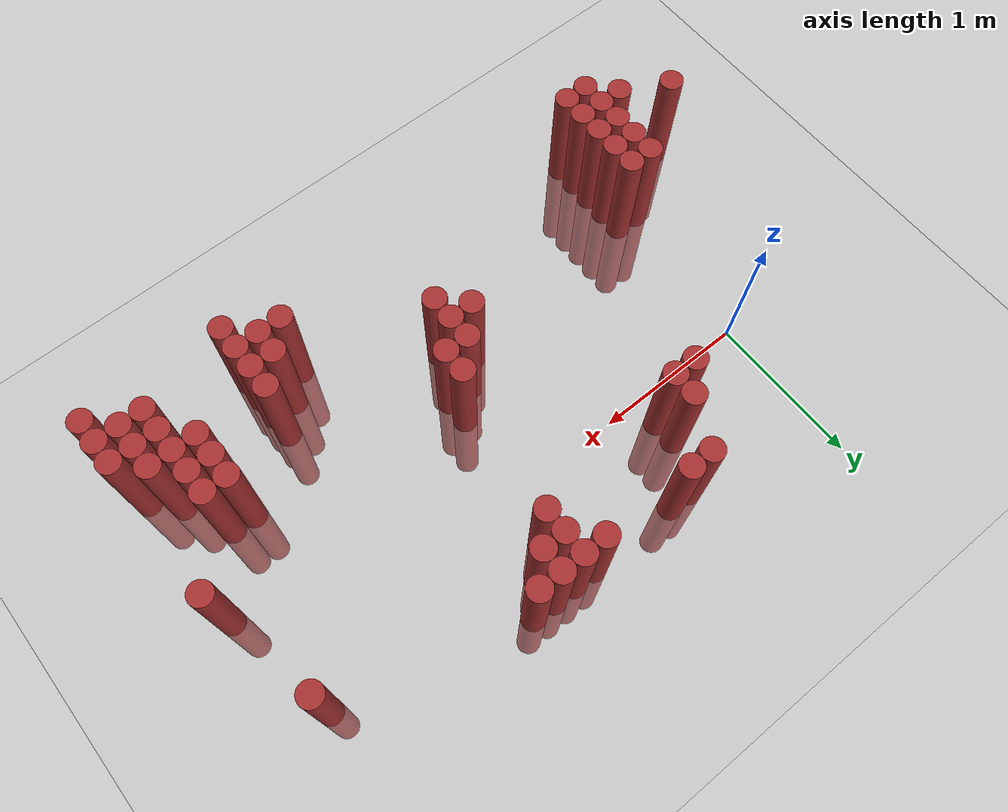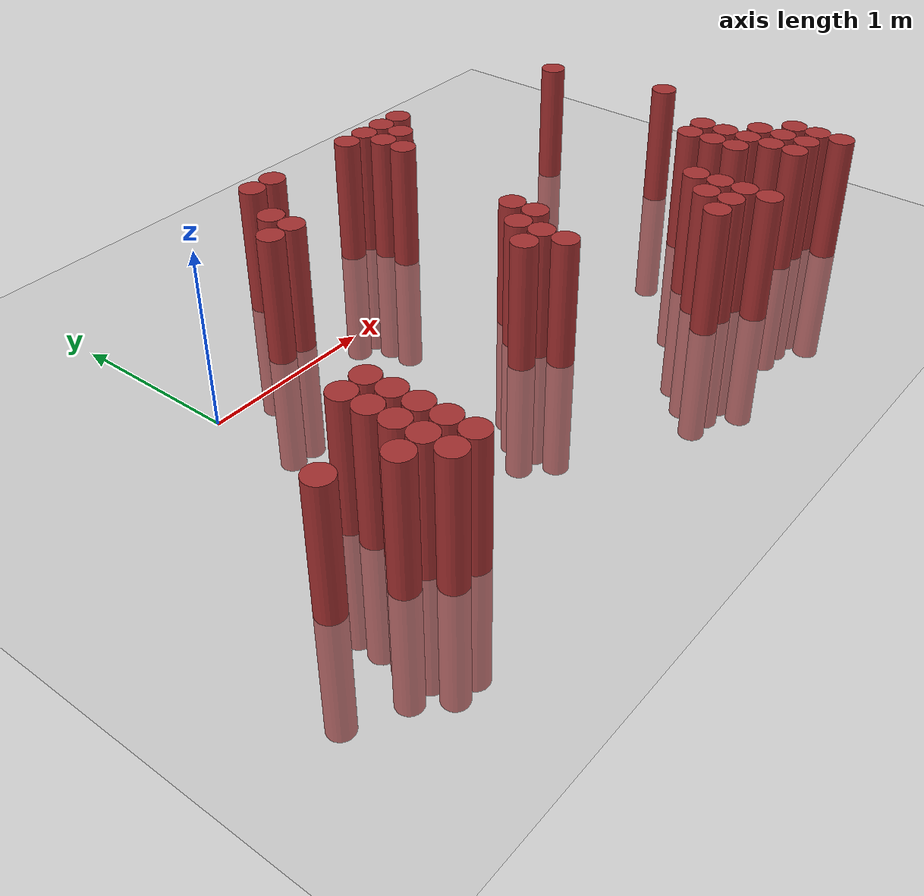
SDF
<sdf version="1.6">
 <world name="default">
  <model name="ground_plane">
   <static>1</static>
   <link name="link">
    <collision name="collision">
     <geometry><plane><normal>0 0 1</normal><size>100 100</size></plane></geometry>
     <surface><friction><ode><mu>100</mu><mu2>50</mu2></ode></friction></surface>
    </collision>
    <visual name="visual">
     <cast_shadows>0</cast_shadows>
     <geometry><plane><normal>0 0 1</normal><size>100 100</size></plane></geometry>
     <material>
      <script><uri>file://media/materials/scripts/gazebo.material</uri><name>Gazebo/Grey</name></script>
     </material>
    </visual>
   </link>
  </model>
  <model name="unit_cylinder_403">
   <static>1</static>
   <pose>-0.575000 -1.325000 0.000000 0.000000 0.000000 0.000000</pose>
   <link name="link">
    <inertial>
     <mass>1</mass>
     <inertia><ixx>0.145833</ixx><ixy>0</ixy><ixz>0</ixz><iyy>0.145833</iyy><iyz>0</iyz><izz>0.125</izz></inertia>
    </inertial>
    <collision name="collision">
     <geometry><cylinder><radius>0.075000</radius><length>1.5</length></cylinder></geometry>
    </collision>
    <visual name="visual">
     <geometry><cylinder><radius>0.075000</radius><length>1.5</length></cylinder></geometry>
     <material>
      <ambient>0.648000 0.192000 0.192000 1</ambient>
      <diffuse>0.648000 0.192000 0.192000 1</diffuse>
     </material>
     <material>
      <script><name>Gazebo/Grey</name><uri>file://media/materials/scripts/gazebo.material</uri></script>
     </material>
    </visual>
   </link>
  </model>
  <model name="unit_cylinder_411">
   <static>1</static>
   <pose>-0.275000 -1.475000 0.000000 0.000000 0.000000 0.000000</pose>
   <link name="link">
    <inertial>
     <mass>1</mass>
     <inertia><ixx>0.145833</ixx><ixy>0</ixy><ixz>0</ixz><iyy>0.145833</iyy><iyz>0</iyz><izz>0.125</izz></inertia>
    </inertial>
    <collision name="collision">
     <geometry><cylinder><radius>0.075000</radius><length>1.5</length></cylinder></geometry>
    </collision>
    <visual name="visual">
     <geometry><cylinder><radius>0.075000</radius><length>1.5</length></cylinder></geometry>
     <material>
      <ambient>0.648000 0.192000 0.192000 1</ambient>
      <diffuse>0.648000 0.192000 0.192000 1</diffuse>
     </material>
     <material>
      <script><name>Gazebo/Grey</name><uri>file://media/materials/scripts/gazebo.material</uri></script>
     </material>
    </visual>
   </link>
  </model>
  <model name="unit_cylinder_418">
   <static>1</static>
   <pose>-0.125000 -1.625000 0.000000 0.000000 0.000000 0.000000</pose>
   <link name="link">
    <inertial>
     <mass>1</mass>
     <inertia><ixx>0.145833</ixx><ixy>0</ixy><ixz>0</ixz><iyy>0.145833</iyy><iyz>0</iyz><izz>0.125</izz></inertia>
    </inertial>
    <collision name="collision">
     <geometry><cylinder><radius>0.075000</radius><length>1.5</length></cylinder></geometry>
    </collision>
    <visual name="visual">
     <geometry><cylinder><radius>0.075000</radius><length>1.5</length></cylinder></geometry>
     <material>
      <ambient>0.648000 0.192000 0.192000 1</ambient>
      <diffuse>0.648000 0.192000 0.192000 1</diffuse>
     </material>
     <material>
      <script><name>Gazebo/Grey</name><uri>file://media/materials/scripts/gazebo.material</uri></script>
     </material>
    </visual>
   </link>
  </model>
  <model name="unit_cylinder_419">
   <static>1</static>
   <pose>-0.125000 -1.475000 0.000000 0.000000 0.000000 0.000000</pose>
   <link name="link">
    <inertial>
     <mass>1</mass>
     <inertia><ixx>0.145833</ixx><ixy>0</ixy><ixz>0</ixz><iyy>0.145833</iyy><iyz>0</iyz><izz>0.125</izz></inertia>
    </inertial>
    <collision name="collision">
     <geometry><cylinder><radius>0.075000</radius><length>1.5</length></cylinder></geometry>
    </collision>
    <visual name="visual">
     <geometry><cylinder><radius>0.075000</radius><length>1.5</length></cylinder></geometry>
     <material>
      <ambient>0.648000 0.192000 0.192000 1</ambient>
      <diffuse>0.648000 0.192000 0.192000 1</diffuse>
     </material>
     <material>
      <script><name>Gazebo/Grey</name><uri>file://media/materials/scripts/gazebo.material</uri></script>
     </material>
    </visual>
   </link>
  </model>
  <model name="unit_cylinder_420">
   <static>1</static>
   <pose>-0.125000 -1.325000 0.000000 0.000000 0.000000 0.000000</pose>
   <link name="link">
    <inertial>
     <mass>1</mass>
     <inertia><ixx>0.145833</ixx><ixy>0</ixy><ixz>0</ixz><iyy>0.145833</iyy><iyz>0</iyz><izz>0.125</izz></inertia>
    </inertial>
    <collision name="collision">
     <geometry><cylinder><radius>0.075000</radius><length>1.5</length></cylinder></geometry>
    </collision>
    <visual name="visual">
     <geometry><cylinder><radius>0.075000</radius><length>1.5</length></cylinder></geometry>
     <material>
      <ambient>0.648000 0.192000 0.192000 1</ambient>
      <diffuse>0.648000 0.192000 0.192000 1</diffuse>
     </material>
     <material>
      <script><name>Gazebo/Grey</name><uri>file://media/materials/scripts/gazebo.material</uri></script>
     </material>
    </visual>
   </link>
  </model>
  <model name="unit_cylinder_421">
   <static>1</static>
   <pose>-0.125000 -1.175000 0.000000 0.000000 0.000000 0.000000</pose>
   <link name="link">
    <inertial>
     <mass>1</mass>
     <inertia><ixx>0.145833</ixx><ixy>0</ixy><ixz>0</ixz><iyy>0.145833</iyy><iyz>0</iyz><izz>0.125</izz></inertia>
    </inertial>
    <collision name="collision">
     <geometry><cylinder><radius>0.075000</radius><length>1.5</length></cylinder></geometry>
    </collision>
    <visual name="visual">
     <geometry><cylinder><radius>0.075000</radius><length>1.5</length></cylinder></geometry>
     <material>
      <ambient>0.648000 0.192000 0.192000 1</ambient>
      <diffuse>0.648000 0.192000 0.192000 1</diffuse>
     </material>
     <material>
      <script><name>Gazebo/Grey</name><uri>file://media/materials/scripts/gazebo.material</uri></script>
     </material>
    </visual>
   </link>
  </model>
  <model name="unit_cylinder_422">
   <static>1</static>
   <pose>-0.125000 -1.025000 0.000000 0.000000 0.000000 0.000000</pose>
   <link name="link">
    <inertial>
     <mass>1</mass>
     <inertia><ixx>0.145833</ixx><ixy>0</ixy><ixz>0</ixz><iyy>0.145833</iyy><iyz>0</iyz><izz>0.125</izz></inertia>
    </inertial>
    <collision name="collision">
     <geometry><cylinder><radius>0.075000</radius><length>1.5</length></cylinder></geometry>
    </collision>
    <visual name="visual">
     <geometry><cylinder><radius>0.075000</radius><length>1.5</length></cylinder></geometry>
     <material>
      <ambient>0.648000 0.192000 0.192000 1</ambient>
      <diffuse>0.648000 0.192000 0.192000 1</diffuse>
     </material>
     <material>
      <script><name>Gazebo/Grey</name><uri>file://media/materials/scripts/gazebo.material</uri></script>
     </material>
    </visual>
   </link>
  </model>
  <model name="unit_cylinder_429">
   <static>1</static>
   <pose>0.025000 -1.625000 0.000000 0.000000 0.000000 0.000000</pose>
   <link name="link">
    <inertial>
     <mass>1</mass>
     <inertia><ixx>0.145833</ixx><ixy>0</ixy><ixz>0</ixz><iyy>0.145833</iyy><iyz>0</iyz><izz>0.125</izz></inertia>
    </inertial>
    <collision name="collision">
     <geometry><cylinder><radius>0.075000</radius><length>1.5</length></cylinder></geometry>
    </collision>
    <visual name="visual">
     <geometry><cylinder><radius>0.075000</radius><length>1.5</length></cylinder></geometry>
     <material>
      <ambient>0.648000 0.192000 0.192000 1</ambient>
      <diffuse>0.648000 0.192000 0.192000 1</diffuse>
     </material>
     <material>
      <script><name>Gazebo/Grey</name><uri>file://media/materials/scripts/gazebo.material</uri></script>
     </material>
    </visual>
   </link>
  </model>
  <model name="unit_cylinder_430">
   <static>1</static>
   <pose>0.025000 -1.475000 0.000000 0.000000 0.000000 0.000000</pose>
   <link name="link">
    <inertial>
     <mass>1</mass>
     <inertia><ixx>0.145833</ixx><ixy>0</ixy><ixz>0</ixz><iyy>0.145833</iyy><iyz>0</iyz><izz>0.125</izz></inertia>
    </inertial>
    <collision name="collision">
     <geometry><cylinder><radius>0.075000</radius><length>1.5</length></cylinder></geometry>
    </collision>
    <visual name="visual">
     <geometry><cylinder><radius>0.075000</radius><length>1.5</length></cylinder></geometry>
     <material>
      <ambient>0.648000 0.192000 0.192000 1</ambient>
      <diffuse>0.648000 0.192000 0.192000 1</diffuse>
     </material>
     <material>
      <script><name>Gazebo/Grey</name><uri>file://media/materials/scripts/gazebo.material</uri></script>
     </material>
    </visual>
   </link>
  </model>
  <model name="unit_cylinder_431">
   <static>1</static>
   <pose>0.025000 -1.325000 0.000000 0.000000 0.000000 0.000000</pose>
   <link name="link">
    <inertial>
     <mass>1</mass>
     <inertia><ixx>0.145833</ixx><ixy>0</ixy><ixz>0</ixz><iyy>0.145833</iyy><iyz>0</iyz><izz>0.125</izz></inertia>
    </inertial>
    <collision name="collision">
     <geometry><cylinder><radius>0.075000</radius><length>1.5</length></cylinder></geometry>
    </collision>
    <visual name="visual">
     <geometry><cylinder><radius>0.075000</radius><length>1.5</length></cylinder></geometry>
     <material>
      <ambient>0.648000 0.192000 0.192000 1</ambient>
      <diffuse>0.648000 0.192000 0.192000 1</diffuse>
     </material>
     <material>
      <script><name>Gazebo/Grey</name><uri>file://media/materials/scripts/gazebo.material</uri></script>
     </material>
    </visual>
   </link>
  </model>
  <model name="unit_cylinder_432">
   <static>1</static>
   <pose>0.025000 -1.175000 0.000000 0.000000 0.000000 0.000000</pose>
   <link name="link">
    <inertial>
     <mass>1</mass>
     <inertia><ixx>0.145833</ixx><ixy>0</ixy><ixz>0</ixz><iyy>0.145833</iyy><iyz>0</iyz><izz>0.125</izz></inertia>
    </inertial>
    <collision name="collision">
     <geometry><cylinder><radius>0.075000</radius><length>1.5</length></cylinder></geometry>
    </collision>
    <visual name="visual">
     <geometry><cylinder><radius>0.075000</radius><length>1.5</length></cylinder></geometry>
     <material>
      <ambient>0.648000 0.192000 0.192000 1</ambient>
      <diffuse>0.648000 0.192000 0.192000 1</diffuse>
     </material>
     <material>
      <script><name>Gazebo/Grey</name><uri>file://media/materials/scripts/gazebo.material</uri></script>
     </material>
    </visual>
   </link>
  </model>
  <model name="unit_cylinder_433">
   <static>1</static>
   <pose>0.025000 -1.025000 0.000000 0.000000 0.000000 0.000000</pose>
   <link name="link">
    <inertial>
     <mass>1</mass>
     <inertia><ixx>0.145833</ixx><ixy>0</ixy><ixz>0</ixz><iyy>0.145833</iyy><iyz>0</iyz><izz>0.125</izz></inertia>
    </inertial>
    <collision name="collision">
     <geometry><cylinder><radius>0.075000</radius><length>1.5</length></cylinder></geometry>
    </collision>
    <visual name="visual">
     <geometry><cylinder><radius>0.075000</radius><length>1.5</length></cylinder></geometry>
     <material>
      <ambient>0.648000 0.192000 0.192000 1</ambient>
      <diffuse>0.648000 0.192000 0.192000 1</diffuse>
     </material>
     <material>
      <script><name>Gazebo/Grey</name><uri>file://media/materials/scripts/gazebo.material</uri></script>
     </material>
    </visual>
   </link>
  </model>
  <model name="unit_cylinder_446">
   <static>1</static>
   <pose>0.625000 0.175000 0.000000 0.000000 0.000000 0.000000</pose>
   <link name="link">
    <inertial>
     <mass>1</mass>
     <inertia><ixx>0.145833</ixx><ixy>0</ixy><ixz>0</ixz><iyy>0.145833</iyy><iyz>0</iyz><izz>0.125</izz></inertia>
    </inertial>
    <collision name="collision">
     <geometry><cylinder><radius>0.075000</radius><length>1.5</length></cylinder></geometry>
    </collision>
    <visual name="visual">
     <geometry><cylinder><radius>0.075000</radius><length>1.5</length></cylinder></geometry>
     <material>
      <ambient>0.648000 0.192000 0.192000 1</ambient>
      <diffuse>0.648000 0.192000 0.192000 1</diffuse>
     </material>
     <material>
      <script><name>Gazebo/Grey</name><uri>file://media/materials/scripts/gazebo.material</uri></script>
     </material>
    </visual>
   </link>
  </model>
  <model name="unit_cylinder_451">
   <static>1</static>
   <pose>0.775000 0.175000 0.000000 0.000000 0.000000 0.000000</pose>
   <link name="link">
    <inertial>
     <mass>1</mass>
     <inertia><ixx>0.145833</ixx><ixy>0</ixy><ixz>0</ixz><iyy>0.145833</iyy><iyz>0</iyz><izz>0.125</izz></inertia>
    </inertial>
    <collision name="collision">
     <geometry><cylinder><radius>0.075000</radius><length>1.5</length></cylinder></geometry>
    </collision>
    <visual name="visual">
     <geometry><cylinder><radius>0.075000</radius><length>1.5</length></cylinder></geometry>
     <material>
      <ambient>0.648000 0.192000 0.192000 1</ambient>
      <diffuse>0.648000 0.192000 0.192000 1</diffuse>
     </material>
     <material>
      <script><name>Gazebo/Grey</name><uri>file://media/materials/scripts/gazebo.material</uri></script>
     </material>
    </visual>
   </link>
  </model>
  <model name="unit_cylinder_452">
   <static>1</static>
   <pose>0.775000 0.325000 0.000000 0.000000 0.000000 0.000000</pose>
   <link name="link">
    <inertial>
     <mass>1</mass>
     <inertia><ixx>0.145833</ixx><ixy>0</ixy><ixz>0</ixz><iyy>0.145833</iyy><iyz>0</iyz><izz>0.125</izz></inertia>
    </inertial>
    <collision name="collision">
     <geometry><cylinder><radius>0.075000</radius><length>1.5</length></cylinder></geometry>
    </collision>
    <visual name="visual">
     <geometry><cylinder><radius>0.075000</radius><length>1.5</length></cylinder></geometry>
     <material>
      <ambient>0.648000 0.192000 0.192000 1</ambient>
      <diffuse>0.648000 0.192000 0.192000 1</diffuse>
     </material>
     <material>
      <script><name>Gazebo/Grey</name><uri>file://media/materials/scripts/gazebo.material</uri></script>
     </material>
    </visual>
   </link>
  </model>
  <model name="unit_cylinder_461">
   <static>1</static>
   <pose>0.925000 0.625000 0.000000 0.000000 0.000000 0.000000</pose>
   <link name="link">
    <inertial>
     <mass>1</mass>
     <inertia><ixx>0.145833</ixx><ixy>0</ixy><ixz>0</ixz><iyy>0.145833</iyy><iyz>0</iyz><izz>0.125</izz></inertia>
    </inertial>
    <collision name="collision">
     <geometry><cylinder><radius>0.075000</radius><length>1.5</length></cylinder></geometry>
    </collision>
    <visual name="visual">
     <geometry><cylinder><radius>0.075000</radius><length>1.5</length></cylinder></geometry>
     <material>
      <ambient>0.648000 0.192000 0.192000 1</ambient>
      <diffuse>0.648000 0.192000 0.192000 1</diffuse>
     </material>
     <material>
      <script><name>Gazebo/Grey</name><uri>file://media/materials/scripts/gazebo.material</uri></script>
     </material>
    </visual>
   </link>
  </model>
  <model name="unit_cylinder_478">
   <static>1</static>
   <pose>1.075000 0.625000 0.000000 0.000000 0.000000 0.000000</pose>
   <link name="link">
    <inertial>
     <mass>1</mass>
     <inertia><ixx>0.145833</ixx><ixy>0</ixy><ixz>0</ixz><iyy>0.145833</iyy><iyz>0</iyz><izz>0.125</izz></inertia>
    </inertial>
    <collision name="collision">
     <geometry><cylinder><radius>0.075000</radius><length>1.5</length></cylinder></geometry>
    </collision>
    <visual name="visual">
     <geometry><cylinder><radius>0.075000</radius><length>1.5</length></cylinder></geometry>
     <material>
      <ambient>0.648000 0.192000 0.192000 1</ambient>
      <diffuse>0.648000 0.192000 0.192000 1</diffuse>
     </material>
     <material>
      <script><name>Gazebo/Grey</name><uri>file://media/materials/scripts/gazebo.material</uri></script>
     </material>
    </visual>
   </link>
  </model>
  <model name="unit_cylinder_504">
   <static>1</static>
   <pose>1.375000 -0.875000 0.000000 0.000000 0.000000 0.000000</pose>
   <link name="link">
    <inertial>
     <mass>1</mass>
     <inertia><ixx>0.145833</ixx><ixy>0</ixy><ixz>0</ixz><iyy>0.145833</iyy><iyz>0</iyz><izz>0.125</izz></inertia>
    </inertial>
    <collision name="collision">
     <geometry><cylinder><radius>0.075000</radius><length>1.5</length></cylinder></geometry>
    </collision>
    <visual name="visual">
     <geometry><cylinder><radius>0.075000</radius><length>1.5</length></cylinder></geometry>
     <material>
      <ambient>0.648000 0.192000 0.192000 1</ambient>
      <diffuse>0.648000 0.192000 0.192000 1</diffuse>
     </material>
     <material>
      <script><name>Gazebo/Grey</name><uri>file://media/materials/scripts/gazebo.material</uri></script>
     </material>
    </visual>
   </link>
  </model>
  <model name="unit_cylinder_511">
   <static>1</static>
   <pose>1.525000 -1.025000 0.000000 0.000000 0.000000 0.000000</pose>
   <link name="link">
    <inertial>
     <mass>1</mass>
     <inertia><ixx>0.145833</ixx><ixy>0</ixy><ixz>0</ixz><iyy>0.145833</iyy><iyz>0</iyz><izz>0.125</izz></inertia>
    </inertial>
    <collision name="collision">
     <geometry><cylinder><radius>0.075000</radius><length>1.5</length></cylinder></geometry>
    </collision>
    <visual name="visual">
     <geometry><cylinder><radius>0.075000</radius><length>1.5</length></cylinder></geometry>
     <material>
      <ambient>0.648000 0.192000 0.192000 1</ambient>
      <diffuse>0.648000 0.192000 0.192000 1</diffuse>
     </material>
     <material>
      <script><name>Gazebo/Grey</name><uri>file://media/materials/scripts/gazebo.material</uri></script>
     </material>
    </visual>
   </link>
  </model>
  <model name="unit_cylinder_512">
   <static>1</static>
   <pose>1.525000 -0.875000 0.000000 0.000000 0.000000 0.000000</pose>
   <link name="link">
    <inertial>
     <mass>1</mass>
     <inertia><ixx>0.145833</ixx><ixy>0</ixy><ixz>0</ixz><iyy>0.145833</iyy><iyz>0</iyz><izz>0.125</izz></inertia>
    </inertial>
    <collision name="collision">
     <geometry><cylinder><radius>0.075000</radius><length>1.5</length></cylinder></geometry>
    </collision>
    <visual name="visual">
     <geometry><cylinder><radius>0.075000</radius><length>1.5</length></cylinder></geometry>
     <material>
      <ambient>0.648000 0.192000 0.192000 1</ambient>
      <diffuse>0.648000 0.192000 0.192000 1</diffuse>
     </material>
     <material>
      <script><name>Gazebo/Grey</name><uri>file://media/materials/scripts/gazebo.material</uri></script>
     </material>
    </visual>
   </link>
  </model>
  <model name="unit_cylinder_513">
   <static>1</static>
   <pose>1.525000 -0.725000 0.000000 0.000000 0.000000 0.000000</pose>
   <link name="link">
    <inertial>
     <mass>1</mass>
     <inertia><ixx>0.145833</ixx><ixy>0</ixy><ixz>0</ixz><iyy>0.145833</iyy><iyz>0</iyz><izz>0.125</izz></inertia>
    </inertial>
    <collision name="collision">
     <geometry><cylinder><radius>0.075000</radius><length>1.5</length></cylinder></geometry>
    </collision>
    <visual name="visual">
     <geometry><cylinder><radius>0.075000</radius><length>1.5</length></cylinder></geometry>
     <material>
      <ambient>0.648000 0.192000 0.192000 1</ambient>
      <diffuse>0.648000 0.192000 0.192000 1</diffuse>
     </material>
     <material>
      <script><name>Gazebo/Grey</name><uri>file://media/materials/scripts/gazebo.material</uri></script>
     </material>
    </visual>
   </link>
  </model>
  <model name="unit_cylinder_516">
   <static>1</static>
   <pose>1.675000 -0.725000 0.000000 0.000000 0.000000 0.000000</pose>
   <link name="link">
    <inertial>
     <mass>1</mass>
     <inertia><ixx>0.145833</ixx><ixy>0</ixy><ixz>0</ixz><iyy>0.145833</iyy><iyz>0</iyz><izz>0.125</izz></inertia>
    </inertial>
    <collision name="collision">
     <geometry><cylinder><radius>0.075000</radius><length>1.5</length></cylinder></geometry>
    </collision>
    <visual name="visual">
     <geometry><cylinder><radius>0.075000</radius><length>1.5</length></cylinder></geometry>
     <material>
      <ambient>0.648000 0.192000 0.192000 1</ambient>
      <diffuse>0.648000 0.192000 0.192000 1</diffuse>
     </material>
     <material>
      <script><name>Gazebo/Grey</name><uri>file://media/materials/scripts/gazebo.material</uri></script>
     </material>
    </visual>
   </link>
  </model>
  <model name="unit_cylinder_517">
   <static>1</static>
   <pose>1.675000 -0.575000 0.000000 0.000000 0.000000 0.000000</pose>
   <link name="link">
    <inertial>
     <mass>1</mass>
     <inertia><ixx>0.145833</ixx><ixy>0</ixy><ixz>0</ixz><iyy>0.145833</iyy><iyz>0</iyz><izz>0.125</izz></inertia>
    </inertial>
    <collision name="collision">
     <geometry><cylinder><radius>0.075000</radius><length>1.5</length></cylinder></geometry>
    </collision>
    <visual name="visual">
     <geometry><cylinder><radius>0.075000</radius><length>1.5</length></cylinder></geometry>
     <material>
      <ambient>0.648000 0.192000 0.192000 1</ambient>
      <diffuse>0.648000 0.192000 0.192000 1</diffuse>
     </material>
     <material>
      <script><name>Gazebo/Grey</name><uri>file://media/materials/scripts/gazebo.material</uri></script>
     </material>
    </visual>
   </link>
  </model>
  <model name="unit_cylinder_518">
   <static>1</static>
   <pose>1.675000 0.625000 0.000000 0.000000 0.000000 0.000000</pose>
   <link name="link">
    <inertial>
     <mass>1</mass>
     <inertia><ixx>0.145833</ixx><ixy>0</ixy><ixz>0</ixz><iyy>0.145833</iyy><iyz>0</iyz><izz>0.125</izz></inertia>
    </inertial>
    <collision name="collision">
     <geometry><cylinder><radius>0.075000</radius><length>1.5</length></cylinder></geometry>
    </collision>
    <visual name="visual">
     <geometry><cylinder><radius>0.075000</radius><length>1.5</length></cylinder></geometry>
     <material>
      <ambient>0.648000 0.192000 0.192000 1</ambient>
      <diffuse>0.648000 0.192000 0.192000 1</diffuse>
     </material>
     <material>
      <script><name>Gazebo/Grey</name><uri>file://media/materials/scripts/gazebo.material</uri></script>
     </material>
    </visual>
   </link>
  </model>
  <model name="unit_cylinder_523">
   <static>1</static>
   <pose>1.825000 0.325000 0.000000 0.000000 0.000000 0.000000</pose>
   <link name="link">
    <inertial>
     <mass>1</mass>
     <inertia><ixx>0.145833</ixx><ixy>0</ixy><ixz>0</ixz><iyy>0.145833</iyy><iyz>0</iyz><izz>0.125</izz></inertia>
    </inertial>
    <collision name="collision">
     <geometry><cylinder><radius>0.075000</radius><length>1.5</length></cylinder></geometry>
    </collision>
    <visual name="visual">
     <geometry><cylinder><radius>0.075000</radius><length>1.5</length></cylinder></geometry>
     <material>
      <ambient>0.648000 0.192000 0.192000 1</ambient>
      <diffuse>0.648000 0.192000 0.192000 1</diffuse>
     </material>
     <material>
      <script><name>Gazebo/Grey</name><uri>file://media/materials/scripts/gazebo.material</uri></script>
     </material>
    </visual>
   </link>
  </model>
  <model name="unit_cylinder_524">
   <static>1</static>
   <pose>1.825000 0.475000 0.000000 0.000000 0.000000 0.000000</pose>
   <link name="link">
    <inertial>
     <mass>1</mass>
     <inertia><ixx>0.145833</ixx><ixy>0</ixy><ixz>0</ixz><iyy>0.145833</iyy><iyz>0</iyz><izz>0.125</izz></inertia>
    </inertial>
    <collision name="collision">
     <geometry><cylinder><radius>0.075000</radius><length>1.5</length></cylinder></geometry>
    </collision>
    <visual name="visual">
     <geometry><cylinder><radius>0.075000</radius><length>1.5</length></cylinder></geometry>
     <material>
      <ambient>0.648000 0.192000 0.192000 1</ambient>
      <diffuse>0.648000 0.192000 0.192000 1</diffuse>
     </material>
     <material>
      <script><name>Gazebo/Grey</name><uri>file://media/materials/scripts/gazebo.material</uri></script>
     </material>
    </visual>
   </link>
  </model>
  <model name="unit_cylinder_525">
   <static>1</static>
   <pose>1.825000 0.625000 0.000000 0.000000 0.000000 0.000000</pose>
   <link name="link">
    <inertial>
     <mass>1</mass>
     <inertia><ixx>0.145833</ixx><ixy>0</ixy><ixz>0</ixz><iyy>0.145833</iyy><iyz>0</iyz><izz>0.125</izz></inertia>
    </inertial>
    <collision name="collision">
     <geometry><cylinder><radius>0.075000</radius><length>1.5</length></cylinder></geometry>
    </collision>
    <visual name="visual">
     <geometry><cylinder><radius>0.075000</radius><length>1.5</length></cylinder></geometry>
     <material>
      <ambient>0.648000 0.192000 0.192000 1</ambient>
      <diffuse>0.648000 0.192000 0.192000 1</diffuse>
     </material>
     <material>
      <script><name>Gazebo/Grey</name><uri>file://media/materials/scripts/gazebo.material</uri></script>
     </material>
    </visual>
   </link>
  </model>
  <model name="unit_cylinder_535">
   <static>1</static>
   <pose>1.975000 0.475000 0.000000 0.000000 0.000000 0.000000</pose>
   <link name="link">
    <inertial>
     <mass>1</mass>
     <inertia><ixx>0.145833</ixx><ixy>0</ixy><ixz>0</ixz><iyy>0.145833</iyy><iyz>0</iyz><izz>0.125</izz></inertia>
    </inertial>
    <collision name="collision">
     <geometry><cylinder><radius>0.075000</radius><length>1.5</length></cylinder></geometry>
    </collision>
    <visual name="visual">
     <geometry><cylinder><radius>0.075000</radius><length>1.5</length></cylinder></geometry>
     <material>
      <ambient>0.648000 0.192000 0.192000 1</ambient>
      <diffuse>0.648000 0.192000 0.192000 1</diffuse>
     </material>
     <material>
      <script><name>Gazebo/Grey</name><uri>file://media/materials/scripts/gazebo.material</uri></script>
     </material>
    </visual>
   </link>
  </model>
  <model name="unit_cylinder_536">
   <static>1</static>
   <pose>1.975000 0.625000 0.000000 0.000000 0.000000 0.000000</pose>
   <link name="link">
    <inertial>
     <mass>1</mass>
     <inertia><ixx>0.145833</ixx><ixy>0</ixy><ixz>0</ixz><iyy>0.145833</iyy><iyz>0</iyz><izz>0.125</izz></inertia>
    </inertial>
    <collision name="collision">
     <geometry><cylinder><radius>0.075000</radius><length>1.5</length></cylinder></geometry>
    </collision>
    <visual name="visual">
     <geometry><cylinder><radius>0.075000</radius><length>1.5</length></cylinder></geometry>
     <material>
      <ambient>0.648000 0.192000 0.192000 1</ambient>
      <diffuse>0.648000 0.192000 0.192000 1</diffuse>
     </material>
     <material>
      <script><name>Gazebo/Grey</name><uri>file://media/materials/scripts/gazebo.material</uri></script>
     </material>
    </visual>
   </link>
  </model>
  <model name="unit_cylinder_549">
   <static>1</static>
   <pose>2.125000 0.625000 0.000000 0.000000 0.000000 0.000000</pose>
   <link name="link">
    <inertial>
     <mass>1</mass>
     <inertia><ixx>0.145833</ixx><ixy>0</ixy><ixz>0</ixz><iyy>0.145833</iyy><iyz>0</iyz><izz>0.125</izz></inertia>
    </inertial>
    <collision name="collision">
     <geometry><cylinder><radius>0.075000</radius><length>1.5</length></cylinder></geometry>
    </collision>
    <visual name="visual">
     <geometry><cylinder><radius>0.075000</radius><length>1.5</length></cylinder></geometry>
     <material>
      <ambient>0.648000 0.192000 0.192000 1</ambient>
      <diffuse>0.648000 0.192000 0.192000 1</diffuse>
     </material>
     <material>
      <script><name>Gazebo/Grey</name><uri>file://media/materials/scripts/gazebo.material</uri></script>
     </material>
    </visual>
   </link>
  </model>
  <model name="unit_cylinder_561">
   <static>1</static>
   <pose>2.275000 -1.475000 0.000000 0.000000 0.000000 0.000000</pose>
   <link name="link">
    <inertial>
     <mass>1</mass>
     <inertia><ixx>0.145833</ixx><ixy>0</ixy><ixz>0</ixz><iyy>0.145833</iyy><iyz>0</iyz><izz>0.125</izz></inertia>
    </inertial>
    <collision name="collision">
     <geometry><cylinder><radius>0.075000</radius><length>1.5</length></cylinder></geometry>
    </collision>
    <visual name="visual">
     <geometry><cylinder><radius>0.075000</radius><length>1.5</length></cylinder></geometry>
     <material>
      <ambient>0.648000 0.192000 0.192000 1</ambient>
      <diffuse>0.648000 0.192000 0.192000 1</diffuse>
     </material>
     <material>
      <script><name>Gazebo/Grey</name><uri>file://media/materials/scripts/gazebo.material</uri></script>
     </material>
    </visual>
   </link>
  </model>
  <model name="unit_cylinder_564">
   <static>1</static>
   <pose>2.425000 -1.475000 0.000000 0.000000 0.000000 0.000000</pose>
   <link name="link">
    <inertial>
     <mass>1</mass>
     <inertia><ixx>0.145833</ixx><ixy>0</ixy><ixz>0</ixz><iyy>0.145833</iyy><iyz>0</iyz><izz>0.125</izz></inertia>
    </inertial>
    <collision name="collision">
     <geometry><cylinder><radius>0.075000</radius><length>1.5</length></cylinder></geometry>
    </collision>
    <visual name="visual">
     <geometry><cylinder><radius>0.075000</radius><length>1.5</length></cylinder></geometry>
     <material>
      <ambient>0.648000 0.192000 0.192000 1</ambient>
      <diffuse>0.648000 0.192000 0.192000 1</diffuse>
     </material>
     <material>
      <script><name>Gazebo/Grey</name><uri>file://media/materials/scripts/gazebo.material</uri></script>
     </material>
    </visual>
   </link>
  </model>
  <model name="unit_cylinder_565">
   <static>1</static>
   <pose>2.425000 -1.325000 0.000000 0.000000 0.000000 0.000000</pose>
   <link name="link">
    <inertial>
     <mass>1</mass>
     <inertia><ixx>0.145833</ixx><ixy>0</ixy><ixz>0</ixz><iyy>0.145833</iyy><iyz>0</iyz><izz>0.125</izz></inertia>
    </inertial>
    <collision name="collision">
     <geometry><cylinder><radius>0.075000</radius><length>1.5</length></cylinder></geometry>
    </collision>
    <visual name="visual">
     <geometry><cylinder><radius>0.075000</radius><length>1.5</length></cylinder></geometry>
     <material>
      <ambient>0.648000 0.192000 0.192000 1</ambient>
      <diffuse>0.648000 0.192000 0.192000 1</diffuse>
     </material>
     <material>
      <script><name>Gazebo/Grey</name><uri>file://media/materials/scripts/gazebo.material</uri></script>
     </material>
    </visual>
   </link>
  </model>
  <model name="unit_cylinder_567">
   <static>1</static>
   <pose>2.575000 -1.625000 0.000000 0.000000 0.000000 0.000000</pose>
   <link name="link">
    <inertial>
     <mass>1</mass>
     <inertia><ixx>0.145833</ixx><ixy>0</ixy><ixz>0</ixz><iyy>0.145833</iyy><iyz>0</iyz><izz>0.125</izz></inertia>
    </inertial>
    <collision name="collision">
     <geometry><cylinder><radius>0.075000</radius><length>1.5</length></cylinder></geometry>
    </collision>
    <visual name="visual">
     <geometry><cylinder><radius>0.075000</radius><length>1.5</length></cylinder></geometry>
     <material>
      <ambient>0.648000 0.192000 0.192000 1</ambient>
      <diffuse>0.648000 0.192000 0.192000 1</diffuse>
     </material>
     <material>
      <script><name>Gazebo/Grey</name><uri>file://media/materials/scripts/gazebo.material</uri></script>
     </material>
    </visual>
   </link>
  </model>
  <model name="unit_cylinder_568">
   <static>1</static>
   <pose>2.575000 -1.475000 0.000000 0.000000 0.000000 0.000000</pose>
   <link name="link">
    <inertial>
     <mass>1</mass>
     <inertia><ixx>0.145833</ixx><ixy>0</ixy><ixz>0</ixz><iyy>0.145833</iyy><iyz>0</iyz><izz>0.125</izz></inertia>
    </inertial>
    <collision name="collision">
     <geometry><cylinder><radius>0.075000</radius><length>1.5</length></cylinder></geometry>
    </collision>
    <visual name="visual">
     <geometry><cylinder><radius>0.075000</radius><length>1.5</length></cylinder></geometry>
     <material>
      <ambient>0.648000 0.192000 0.192000 1</ambient>
      <diffuse>0.648000 0.192000 0.192000 1</diffuse>
     </material>
     <material>
      <script><name>Gazebo/Grey</name><uri>file://media/materials/scripts/gazebo.material</uri></script>
     </material>
    </visual>
   </link>
  </model>
  <model name="unit_cylinder_569">
   <static>1</static>
   <pose>2.575000 -1.325000 0.000000 0.000000 0.000000 0.000000</pose>
   <link name="link">
    <inertial>
     <mass>1</mass>
     <inertia><ixx>0.145833</ixx><ixy>0</ixy><ixz>0</ixz><iyy>0.145833</iyy><iyz>0</iyz><izz>0.125</izz></inertia>
    </inertial>
    <collision name="collision">
     <geometry><cylinder><radius>0.075000</radius><length>1.5</length></cylinder></geometry>
    </collision>
    <visual name="visual">
     <geometry><cylinder><radius>0.075000</radius><length>1.5</length></cylinder></geometry>
     <material>
      <ambient>0.648000 0.192000 0.192000 1</ambient>
      <diffuse>0.648000 0.192000 0.192000 1</diffuse>
     </material>
     <material>
      <script><name>Gazebo/Grey</name><uri>file://media/materials/scripts/gazebo.material</uri></script>
     </material>
    </visual>
   </link>
  </model>
  <model name="unit_cylinder_570">
   <static>1</static>
   <pose>2.575000 -1.175000 0.000000 0.000000 0.000000 0.000000</pose>
   <link name="link">
    <inertial>
     <mass>1</mass>
     <inertia><ixx>0.145833</ixx><ixy>0</ixy><ixz>0</ixz><iyy>0.145833</iyy><iyz>0</iyz><izz>0.125</izz></inertia>
    </inertial>
    <collision name="collision">
     <geometry><cylinder><radius>0.075000</radius><length>1.5</length></cylinder></geometry>
    </collision>
    <visual name="visual">
     <geometry><cylinder><radius>0.075000</radius><length>1.5</length></cylinder></geometry>
     <material>
      <ambient>0.648000 0.192000 0.192000 1</ambient>
      <diffuse>0.648000 0.192000 0.192000 1</diffuse>
     </material>
     <material>
      <script><name>Gazebo/Grey</name><uri>file://media/materials/scripts/gazebo.material</uri></script>
     </material>
    </visual>
   </link>
  </model>
  <model name="unit_cylinder_581">
   <static>1</static>
   <pose>3.025000 -1.175000 0.000000 0.000000 0.000000 0.000000</pose>
   <link name="link">
    <inertial>
     <mass>1</mass>
     <inertia><ixx>0.145833</ixx><ixy>0</ixy><ixz>0</ixz><iyy>0.145833</iyy><iyz>0</iyz><izz>0.125</izz></inertia>
    </inertial>
    <collision name="collision">
     <geometry><cylinder><radius>0.075000</radius><length>1.5</length></cylinder></geometry>
    </collision>
    <visual name="visual">
     <geometry><cylinder><radius>0.075000</radius><length>1.5</length></cylinder></geometry>
     <material>
      <ambient>0.648000 0.192000 0.192000 1</ambient>
      <diffuse>0.648000 0.192000 0.192000 1</diffuse>
     </material>
     <material>
      <script><name>Gazebo/Grey</name><uri>file://media/materials/scripts/gazebo.material</uri></script>
     </material>
    </visual>
   </link>
  </model>
  <model name="unit_cylinder_582">
   <static>1</static>
   <pose>3.025000 -1.025000 0.000000 0.000000 0.000000 0.000000</pose>
   <link name="link">
    <inertial>
     <mass>1</mass>
     <inertia><ixx>0.145833</ixx><ixy>0</ixy><ixz>0</ixz><iyy>0.145833</iyy><iyz>0</iyz><izz>0.125</izz></inertia>
    </inertial>
    <collision name="collision">
     <geometry><cylinder><radius>0.075000</radius><length>1.5</length></cylinder></geometry>
    </collision>
    <visual name="visual">
     <geometry><cylinder><radius>0.075000</radius><length>1.5</length></cylinder></geometry>
     <material>
      <ambient>0.648000 0.192000 0.192000 1</ambient>
      <diffuse>0.648000 0.192000 0.192000 1</diffuse>
     </material>
     <material>
      <script><name>Gazebo/Grey</name><uri>file://media/materials/scripts/gazebo.material</uri></script>
     </material>
    </visual>
   </link>
  </model>
  <model name="unit_cylinder_583">
   <static>1</static>
   <pose>3.025000 -0.875000 0.000000 0.000000 0.000000 0.000000</pose>
   <link name="link">
    <inertial>
     <mass>1</mass>
     <inertia><ixx>0.145833</ixx><ixy>0</ixy><ixz>0</ixz><iyy>0.145833</iyy><iyz>0</iyz><izz>0.125</izz></inertia>
    </inertial>
    <collision name="collision">
     <geometry><cylinder><radius>0.075000</radius><length>1.5</length></cylinder></geometry>
    </collision>
    <visual name="visual">
     <geometry><cylinder><radius>0.075000</radius><length>1.5</length></cylinder></geometry>
     <material>
      <ambient>0.648000 0.192000 0.192000 1</ambient>
      <diffuse>0.648000 0.192000 0.192000 1</diffuse>
     </material>
     <material>
      <script><name>Gazebo/Grey</name><uri>file://media/materials/scripts/gazebo.material</uri></script>
     </material>
    </visual>
   </link>
  </model>
  <model name="unit_cylinder_586">
   <static>1</static>
   <pose>3.175000 -1.475000 0.000000 0.000000 0.000000 0.000000</pose>
   <link name="link">
    <inertial>
     <mass>1</mass>
     <inertia><ixx>0.145833</ixx><ixy>0</ixy><ixz>0</ixz><iyy>0.145833</iyy><iyz>0</iyz><izz>0.125</izz></inertia>
    </inertial>
    <collision name="collision">
     <geometry><cylinder><radius>0.075000</radius><length>1.5</length></cylinder></geometry>
    </collision>
    <visual name="visual">
     <geometry><cylinder><radius>0.075000</radius><length>1.5</length></cylinder></geometry>
     <material>
      <ambient>0.648000 0.192000 0.192000 1</ambient>
      <diffuse>0.648000 0.192000 0.192000 1</diffuse>
     </material>
     <material>
      <script><name>Gazebo/Grey</name><uri>file://media/materials/scripts/gazebo.material</uri></script>
     </material>
    </visual>
   </link>
  </model>
  <model name="unit_cylinder_587">
   <static>1</static>
   <pose>3.175000 -1.325000 0.000000 0.000000 0.000000 0.000000</pose>
   <link name="link">
    <inertial>
     <mass>1</mass>
     <inertia><ixx>0.145833</ixx><ixy>0</ixy><ixz>0</ixz><iyy>0.145833</iyy><iyz>0</iyz><izz>0.125</izz></inertia>
    </inertial>
    <collision name="collision">
     <geometry><cylinder><radius>0.075000</radius><length>1.5</length></cylinder></geometry>
    </collision>
    <visual name="visual">
     <geometry><cylinder><radius>0.075000</radius><length>1.5</length></cylinder></geometry>
     <material>
      <ambient>0.648000 0.192000 0.192000 1</ambient>
      <diffuse>0.648000 0.192000 0.192000 1</diffuse>
     </material>
     <material>
      <script><name>Gazebo/Grey</name><uri>file://media/materials/scripts/gazebo.material</uri></script>
     </material>
    </visual>
   </link>
  </model>
  <model name="unit_cylinder_588">
   <static>1</static>
   <pose>3.175000 -1.175000 0.000000 0.000000 0.000000 0.000000</pose>
   <link name="link">
    <inertial>
     <mass>1</mass>
     <inertia><ixx>0.145833</ixx><ixy>0</ixy><ixz>0</ixz><iyy>0.145833</iyy><iyz>0</iyz><izz>0.125</izz></inertia>
    </inertial>
    <collision name="collision">
     <geometry><cylinder><radius>0.075000</radius><length>1.5</length></cylinder></geometry>
    </collision>
    <visual name="visual">
     <geometry><cylinder><radius>0.075000</radius><length>1.5</length></cylinder></geometry>
     <material>
      <ambient>0.648000 0.192000 0.192000 1</ambient>
      <diffuse>0.648000 0.192000 0.192000 1</diffuse>
     </material>
     <material>
      <script><name>Gazebo/Grey</name><uri>file://media/materials/scripts/gazebo.material</uri></script>
     </material>
    </visual>
   </link>
  </model>
  <model name="unit_cylinder_589">
   <static>1</static>
   <pose>3.175000 -1.025000 0.000000 0.000000 0.000000 0.000000</pose>
   <link name="link">
    <inertial>
     <mass>1</mass>
     <inertia><ixx>0.145833</ixx><ixy>0</ixy><ixz>0</ixz><iyy>0.145833</iyy><iyz>0</iyz><izz>0.125</izz></inertia>
    </inertial>
    <collision name="collision">
     <geometry><cylinder><radius>0.075000</radius><length>1.5</length></cylinder></geometry>
    </collision>
    <visual name="visual">
     <geometry><cylinder><radius>0.075000</radius><length>1.5</length></cylinder></geometry>
     <material>
      <ambient>0.648000 0.192000 0.192000 1</ambient>
      <diffuse>0.648000 0.192000 0.192000 1</diffuse>
     </material>
     <material>
      <script><name>Gazebo/Grey</name><uri>file://media/materials/scripts/gazebo.material</uri></script>
     </material>
    </visual>
   </link>
  </model>
  <model name="unit_cylinder_590">
   <static>1</static>
   <pose>3.175000 -0.875000 0.000000 0.000000 0.000000 0.000000</pose>
   <link name="link">
    <inertial>
     <mass>1</mass>
     <inertia><ixx>0.145833</ixx><ixy>0</ixy><ixz>0</ixz><iyy>0.145833</iyy><iyz>0</iyz><izz>0.125</izz></inertia>
    </inertial>
    <collision name="collision">
     <geometry><cylinder><radius>0.075000</radius><length>1.5</length></cylinder></geometry>
    </collision>
    <visual name="visual">
     <geometry><cylinder><radius>0.075000</radius><length>1.5</length></cylinder></geometry>
     <material>
      <ambient>0.648000 0.192000 0.192000 1</ambient>
      <diffuse>0.648000 0.192000 0.192000 1</diffuse>
     </material>
     <material>
      <script><name>Gazebo/Grey</name><uri>file://media/materials/scripts/gazebo.material</uri></script>
     </material>
    </visual>
   </link>
  </model>
  <model name="unit_cylinder_594">
   <static>1</static>
   <pose>3.325000 -1.475000 0.000000 0.000000 0.000000 0.000000</pose>
   <link name="link">
    <inertial>
     <mass>1</mass>
     <inertia><ixx>0.145833</ixx><ixy>0</ixy><ixz>0</ixz><iyy>0.145833</iyy><iyz>0</iyz><izz>0.125</izz></inertia>
    </inertial>
    <collision name="collision">
     <geometry><cylinder><radius>0.075000</radius><length>1.5</length></cylinder></geometry>
    </collision>
    <visual name="visual">
     <geometry><cylinder><radius>0.075000</radius><length>1.5</length></cylinder></geometry>
     <material>
      <ambient>0.648000 0.192000 0.192000 1</ambient>
      <diffuse>0.648000 0.192000 0.192000 1</diffuse>
     </material>
     <material>
      <script><name>Gazebo/Grey</name><uri>file://media/materials/scripts/gazebo.material</uri></script>
     </material>
    </visual>
   </link>
  </model>
  <model name="unit_cylinder_595">
   <static>1</static>
   <pose>3.325000 -1.325000 0.000000 0.000000 0.000000 0.000000</pose>
   <link name="link">
    <inertial>
     <mass>1</mass>
     <inertia><ixx>0.145833</ixx><ixy>0</ixy><ixz>0</ixz><iyy>0.145833</iyy><iyz>0</iyz><izz>0.125</izz></inertia>
    </inertial>
    <collision name="collision">
     <geometry><cylinder><radius>0.075000</radius><length>1.5</length></cylinder></geometry>
    </collision>
    <visual name="visual">
     <geometry><cylinder><radius>0.075000</radius><length>1.5</length></cylinder></geometry>
     <material>
      <ambient>0.648000 0.192000 0.192000 1</ambient>
      <diffuse>0.648000 0.192000 0.192000 1</diffuse>
     </material>
     <material>
      <script><name>Gazebo/Grey</name><uri>file://media/materials/scripts/gazebo.material</uri></script>
     </material>
    </visual>
   </link>
  </model>
  <model name="unit_cylinder_596">
   <static>1</static>
   <pose>3.325000 -1.175000 0.000000 0.000000 0.000000 0.000000</pose>
   <link name="link">
    <inertial>
     <mass>1</mass>
     <inertia><ixx>0.145833</ixx><ixy>0</ixy><ixz>0</ixz><iyy>0.145833</iyy><iyz>0</iyz><izz>0.125</izz></inertia>
    </inertial>
    <collision name="collision">
     <geometry><cylinder><radius>0.075000</radius><length>1.5</length></cylinder></geometry>
    </collision>
    <visual name="visual">
     <geometry><cylinder><radius>0.075000</radius><length>1.5</length></cylinder></geometry>
     <material>
      <ambient>0.648000 0.192000 0.192000 1</ambient>
      <diffuse>0.648000 0.192000 0.192000 1</diffuse>
     </material>
     <material>
      <script><name>Gazebo/Grey</name><uri>file://media/materials/scripts/gazebo.material</uri></script>
     </material>
    </visual>
   </link>
  </model>
  <model name="unit_cylinder_597">
   <static>1</static>
   <pose>3.325000 0.325000 0.000000 0.000000 0.000000 0.000000</pose>
   <link name="link">
    <inertial>
     <mass>1</mass>
     <inertia><ixx>0.145833</ixx><ixy>0</ixy><ixz>0</ixz><iyy>0.145833</iyy><iyz>0</iyz><izz>0.125</izz></inertia>
    </inertial>
    <collision name="collision">
     <geometry><cylinder><radius>0.075000</radius><length>1.5</length></cylinder></geometry>
    </collision>
    <visual name="visual">
     <geometry><cylinder><radius>0.075000</radius><length>1.5</length></cylinder></geometry>
     <material>
      <ambient>0.648000 0.192000 0.192000 1</ambient>
      <diffuse>0.648000 0.192000 0.192000 1</diffuse>
     </material>
     <material>
      <script><name>Gazebo/Grey</name><uri>file://media/materials/scripts/gazebo.material</uri></script>
     </material>
    </visual>
   </link>
  </model>
  <model name="unit_cylinder_602">
   <static>1</static>
   <pose>3.475000 -1.625000 0.000000 0.000000 0.000000 0.000000</pose>
   <link name="link">
    <inertial>
     <mass>1</mass>
     <inertia><ixx>0.145833</ixx><ixy>0</ixy><ixz>0</ixz><iyy>0.145833</iyy><iyz>0</iyz><izz>0.125</izz></inertia>
    </inertial>
    <collision name="collision">
     <geometry><cylinder><radius>0.075000</radius><length>1.5</length></cylinder></geometry>
    </collision>
    <visual name="visual">
     <geometry><cylinder><radius>0.075000</radius><length>1.5</length></cylinder></geometry>
     <material>
      <ambient>0.648000 0.192000 0.192000 1</ambient>
      <diffuse>0.648000 0.192000 0.192000 1</diffuse>
     </material>
     <material>
      <script><name>Gazebo/Grey</name><uri>file://media/materials/scripts/gazebo.material</uri></script>
     </material>
    </visual>
   </link>
  </model>
  <model name="unit_cylinder_603">
   <static>1</static>
   <pose>3.475000 -1.475000 0.000000 0.000000 0.000000 0.000000</pose>
   <link name="link">
    <inertial>
     <mass>1</mass>
     <inertia><ixx>0.145833</ixx><ixy>0</ixy><ixz>0</ixz><iyy>0.145833</iyy><iyz>0</iyz><izz>0.125</izz></inertia>
    </inertial>
    <collision name="collision">
     <geometry><cylinder><radius>0.075000</radius><length>1.5</length></cylinder></geometry>
    </collision>
    <visual name="visual">
     <geometry><cylinder><radius>0.075000</radius><length>1.5</length></cylinder></geometry>
     <material>
      <ambient>0.648000 0.192000 0.192000 1</ambient>
      <diffuse>0.648000 0.192000 0.192000 1</diffuse>
     </material>
     <material>
      <script><name>Gazebo/Grey</name><uri>file://media/materials/scripts/gazebo.material</uri></script>
     </material>
    </visual>
   </link>
  </model>
  <model name="unit_cylinder_604">
   <static>1</static>
   <pose>3.475000 -1.325000 0.000000 0.000000 0.000000 0.000000</pose>
   <link name="link">
    <inertial>
     <mass>1</mass>
     <inertia><ixx>0.145833</ixx><ixy>0</ixy><ixz>0</ixz><iyy>0.145833</iyy><iyz>0</iyz><izz>0.125</izz></inertia>
    </inertial>
    <collision name="collision">
     <geometry><cylinder><radius>0.075000</radius><length>1.5</length></cylinder></geometry>
    </collision>
    <visual name="visual">
     <geometry><cylinder><radius>0.075000</radius><length>1.5</length></cylinder></geometry>
     <material>
      <ambient>0.648000 0.192000 0.192000 1</ambient>
      <diffuse>0.648000 0.192000 0.192000 1</diffuse>
     </material>
     <material>
      <script><name>Gazebo/Grey</name><uri>file://media/materials/scripts/gazebo.material</uri></script>
     </material>
    </visual>
   </link>
  </model>
  <model name="unit_cylinder_605">
   <static>1</static>
   <pose>3.475000 -0.425000 0.000000 0.000000 0.000000 0.000000</pose>
   <link name="link">
    <inertial>
     <mass>1</mass>
     <inertia><ixx>0.145833</ixx><ixy>0</ixy><ixz>0</ixz><iyy>0.145833</iyy><iyz>0</iyz><izz>0.125</izz></inertia>
    </inertial>
    <collision name="collision">
     <geometry><cylinder><radius>0.075000</radius><length>1.5</length></cylinder></geometry>
    </collision>
    <visual name="visual">
     <geometry><cylinder><radius>0.075000</radius><length>1.5</length></cylinder></geometry>
     <material>
      <ambient>0.648000 0.192000 0.192000 1</ambient>
      <diffuse>0.648000 0.192000 0.192000 1</diffuse>
     </material>
     <material>
      <script><name>Gazebo/Grey</name><uri>file://media/materials/scripts/gazebo.material</uri></script>
     </material>
    </visual>
   </link>
  </model>
 </world>
</sdf>
